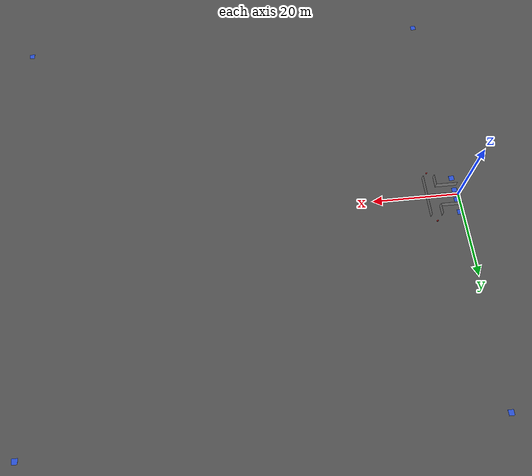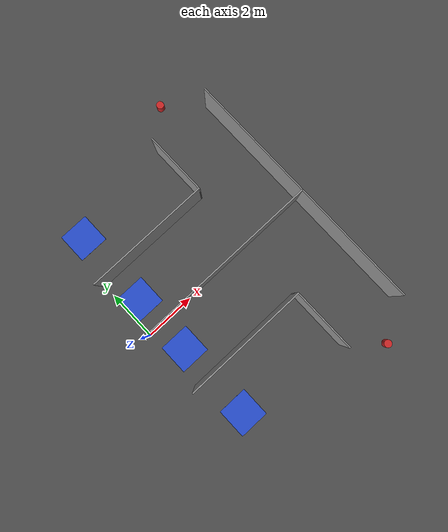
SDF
<sdf version="1.5">
 <world name="default">
  <physics type="ode">
   <ode>
    <solver><type>quick</type><iters>100</iters><sor>1.0</sor></solver>
    <constraints>
     <cfm>0.0</cfm>
     <erp>0.9</erp>
     <contact_max_correcting_vel>0.1</contact_max_correcting_vel>
     <contact_surface_layer>0.0</contact_surface_layer>
    </constraints>
   </ode>
   <real_time_update_rate>1000</real_time_update_rate>
   <max_step_size>0.0010</max_step_size>
  </physics>
  <scene>
   <sky><clouds><speed>12</speed></clouds></sky>
   <ambient>0.4 0.4 0.4 1</ambient>
   <background>0.25 0.25 0.25 1</background>
  </scene>
  <model name="ground_plane">
   <static>true</static>
   <link name="link">
    <collision name="collision">
     <geometry><plane><normal>0 0 1</normal><size>5000 5000</size></plane></geometry>
     <surface><friction><ode><mu>1</mu><mu2>1</mu2></ode></friction></surface>
    </collision>
    <visual name="runway">
     <pose>000 0 0.005 0 0 0</pose>
     <cast_shadows>false</cast_shadows>
     <geometry><plane><normal>0 0 1</normal><size>220 120</size></plane></geometry>
     <material>
      <script><uri>file://media/materials/scripts/gazebo.material</uri><name>Gazebo/DarkGrey</name></script>
     </material>
    </visual>
   </link>
  </model>
  <model name="emiro_wall"><include><uri>model://emiro_wall</uri></include></model>
  <model name="emiro_pad"><include><uri>model://emiro_pad</uri></include><pose>11.5 0 0 0 0 0</pose></model>
  <include><uri>model://sun</uri></include>
 </world>
</sdf>

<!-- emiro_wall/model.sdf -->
<sdf version='1.6'>
  <model name='emiro_wall'>
    <pose frame=''>3.75 0 0 0 -0 0</pose>
    <link name='wall_12'>
      <collision name='wall_12_Collision'>
        <geometry>
          <box>
            <size>4.95 0.05 1.5</size>
          </box>
        </geometry>
        <pose frame=''>0 0 0.75 0 -0 0</pose>
      </collision>
      <visual name='wall_12_Visual'>
        <pose frame=''>0 0 0.75 0 -0 0</pose>
        <geometry>
          <box>
            <size>4.95 0.05 1.5</size>
          </box>
        </geometry>
        <material>
          <script>
            <uri>file://media/materials/scripts/gazebo.material</uri>
            <name>Gazebo/Grey</name>
          </script>
          <ambient>1 1 1 1</ambient>
        </material>
        <meta>
          <layer>0</layer>
        </meta>
      </visual>
      <pose frame=''>-1.3 -2.5 0 0 -0 0</pose>
    </link>
    <link name='wall_14'>
      <collision name='wall_14_Collision'>
        <geometry>
          <box>
            <size>2.55 0.05 1.5</size>
          </box>
        </geometry>
        <pose frame=''>0 0 0.75 0 -0 0</pose>
      </collision>
      <visual name='wall_14_Visual'>
        <pose frame=''>0 0 0.75 0 -0 0</pose>
        <geometry>
          <box>
            <size>2.55 0.05 1.5</size>
          </box>
        </geometry>
        <material>
          <script>
            <uri>file://media/materials/scripts/gazebo.material</uri>
            <name>Gazebo/Grey</name>
          </script>
          <ambient>1 1 1 1</ambient>
        </material>
        <meta>
          <layer>0</layer>
        </meta>
      </visual>
      <pose frame=''>1.15 -3.75 0 0 -0 -1.5708</pose>
    </link>
    <link name='wall_16'>
      <collision name='wall_16_Collision'>
        <geometry>
          <box>
            <size>10.05 0.05 1.5</size>
          </box>
        </geometry>
        <pose frame=''>0 0 0.75 0 -0 0</pose>
      </collision>
      <visual name='wall_16_Visual'>
        <pose frame=''>0 0 0.75 0 -0 0</pose>
        <geometry>
          <box>
            <size>10.05 0.05 1.5</size>
          </box>
        </geometry>
        <material>
          <script>
            <uri>file://media/materials/scripts/gazebo.material</uri>
            <name>Gazebo/Grey</name>
          </script>
          <ambient>1 1 1 1</ambient>
        </material>
        <meta>
          <layer>0</layer>
        </meta>
      </visual>
      <pose frame=''>3.75 0 0 0 -0 1.5708</pose>
    </link>
    <link name='wall_4'>
      <collision name='wall_4_Collision'>
        <geometry>
          <box>
            <size>7.55 0.05 1.5</size>
          </box>
        </geometry>
        <pose frame=''>0 0 0.75 0 -0 0</pose>
      </collision>
      <visual name='wall_4_Visual'>
        <pose frame=''>0 0 0.75 0 -0 0</pose>
        <geometry>
          <box>
            <size>7.55 0.05 1.5</size>
          </box>
        </geometry>
        <material>
          <script>
            <uri>file://media/materials/scripts/gazebo.material</uri>
            <name>Gazebo/Grey</name>
          </script>
          <ambient>1 1 1 1</ambient>
        </material>
        <meta>
          <layer>0</layer>
        </meta>
      </visual>
      <pose frame=''>-0 0 0 0 -0 0</pose>
    </link>
    <link name='wall_6'>
      <collision name='wall_6_Collision'>
        <geometry>
          <box>
            <size>4.95 0.05 1.5</size>
          </box>
        </geometry>
        <pose frame=''>0 0 0.75 0 -0 0</pose>
      </collision>
      <visual name='wall_6_Visual'>
        <pose frame=''>0 0 0.75 0 -0 0</pose>
        <geometry>
          <box>
            <size>4.95 0.05 1.5</size>
          </box>
        </geometry>
        <material>
          <script>
            <uri>file://media/materials/scripts/gazebo.material</uri>
            <name>Gazebo/Grey</name>
          </script>
          <ambient>1 1 1 1</ambient>
        </material>
        <meta>
          <layer>0</layer>
        </meta>
      </visual>
      <pose frame=''>-1.3 2.5 0 0 -0 0</pose>
    </link>
    <link name='wall_8'>
      <collision name='wall_8_Collision'>
        <geometry>
          <box>
            <size>2.48 0.05 1.5</size>
          </box>
        </geometry>
        <pose frame=''>0 0 0.75 0 -0 0</pose>
      </collision>
      <visual name='wall_8_Visual'>
        <pose frame=''>0 0 0.75 0 -0 0</pose>
        <geometry>
          <box>
            <size>2.48 0.05 1.5</size>
          </box>
        </geometry>
        <material>
          <script>
            <uri>file://media/materials/scripts/gazebo.material</uri>
            <name>Gazebo/Grey</name>
          </script>
          <ambient>1 1 1 1</ambient>
        </material>
        <meta>
          <layer>0</layer>
        </meta>
      </visual>
      <pose frame=''>1.15 3.715 0 0 -0 1.5708</pose>
    </link>
    <static>1</static>
  </model>
</sdf>

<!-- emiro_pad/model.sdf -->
<sdf version='1.6'>
  <model name='emiro_pad'>
    <link name='link_1_clone'>
      <inertial>
        <mass>1</mass>
        <inertia>
          <ixx>0.120003</ixx>
          <ixy>0</ixy>
          <ixz>0</ixz>
          <iyy>0.120003</iyy>
          <iyz>0</iyz>
          <izz>0.24</izz>
        </inertia>
        <pose frame=''>0 0 0 0 -0 0</pose>
      </inertial>
      <pose frame=''>-10.9 1.23263 0.00 0 -0 0</pose>
      <gravity>1</gravity>
      <self_collide>0</self_collide>
      <kinematic>0</kinematic>
      <enable_wind>0</enable_wind>
      <visual name='visual'>
        <pose frame=''>0 0 0 0 -0 0</pose>
        <geometry>
          <box>
            <size>1.2 1.2 0.006</size>
          </box>
        </geometry>
        <material>
          <lighting>1</lighting>
          <script>
            <uri>file://media/materials/scripts/gazebo.material</uri>
            <name>Gazebo/Blue</name>
          </script>
          <shader type='pixel'>
            <normal_map>__default__</normal_map>
          </shader>
          <ambient>0.3 0.3 0.3 1</ambient>
          <diffuse>0.7 0.7 0.7 1</diffuse>
          <specular>0.01 0.01 0.01 1</specular>
          <emissive>0 0 0 1</emissive>
        </material>
        <transparency>0</transparency>
        <cast_shadows>1</cast_shadows>
      </visual>
      <collision name='collision'>
        <laser_retro>0</laser_retro>
        <max_contacts>10</max_contacts>
        <pose frame=''>0 0 0 0 -0 0</pose>
        <geometry>
          <box>
            <size>1.2 1.2 0.006</size>
          </box>
        </geometry>
        <surface>
          <friction>
            <ode>
              <mu>1</mu>
              <mu2>1</mu2>
              <fdir1>0 0 0</fdir1>
              <slip1>0</slip1>
              <slip2>0</slip2>
            </ode>
            <torsional>
              <coefficient>1</coefficient>
              <patch_radius>0</patch_radius>
              <surface_radius>0</surface_radius>
              <use_patch_radius>1</use_patch_radius>
              <ode>
                <slip>0</slip>
              </ode>
            </torsional>
          </friction>
          <bounce>
            <restitution_coefficient>0</restitution_coefficient>
            <threshold>1e+06</threshold>
          </bounce>
          <contact>
            <collide_without_contact>0</collide_without_contact>
            <collide_without_contact_bitmask>1</collide_without_contact_bitmask>
            <collide_bitmask>1</collide_bitmask>
            <ode>
              <soft_cfm>0</soft_cfm>
              <soft_erp>0.2</soft_erp>
              <kp>1e+13</kp>
              <kd>1</kd>
              <max_vel>0.01</max_vel>
              <min_depth>0</min_depth>
            </ode>
            <bullet>
              <split_impulse>1</split_impulse>
              <split_impulse_penetration_threshold>-0.01</split_impulse_penetration_threshold>
              <soft_cfm>0</soft_cfm>
              <soft_erp>0.2</soft_erp>
              <kp>1e+13</kp>
              <kd>1</kd>
            </bullet>
          </contact>
        </surface>
      </collision>
    </link>
    <link name='link_1_clone_clone'>
      <inertial>
        <mass>1</mass>
        <inertia>
          <ixx>0.120003</ixx>
          <ixy>0</ixy>
          <ixz>0</ixz>
          <iyy>0.120003</iyy>
          <iyz>0</iyz>
          <izz>0.24</izz>
        </inertia>
        <pose frame=''>0 0 0 0 -0 0</pose>
      </inertial>
      <pose frame=''>-10.9 4.406 0.00 0 -0 0</pose>
      <gravity>1</gravity>
      <self_collide>0</self_collide>
      <kinematic>0</kinematic>
      <enable_wind>0</enable_wind>
      <visual name='visual'>
        <pose frame=''>0 0 0 0 -0 0</pose>
        <geometry>
          <box>
            <size>1.2 1.2 0.006</size>
          </box>
        </geometry>
        <material>
          <lighting>1</lighting>
          <script>
            <uri>file://media/materials/scripts/gazebo.material</uri>
            <name>Gazebo/Blue</name>
          </script>
          <shader type='pixel'>
            <normal_map>__default__</normal_map>
          </shader>
          <ambient>0.3 0.3 0.3 1</ambient>
          <diffuse>0.7 0.7 0.7 1</diffuse>
          <specular>0.01 0.01 0.01 1</specular>
          <emissive>0 0 0 1</emissive>
        </material>
        <transparency>0</transparency>
        <cast_shadows>1</cast_shadows>
      </visual>
      <collision name='collision'>
        <laser_retro>0</laser_retro>
        <max_contacts>10</max_contacts>
        <pose frame=''>0 0 0 0 -0 0</pose>
        <geometry>
          <box>
            <size>1.2 1.2 0.006</size>
          </box>
        </geometry>
        <surface>
          <friction>
            <ode>
              <mu>1</mu>
              <mu2>1</mu2>
              <fdir1>0 0 0</fdir1>
              <slip1>0</slip1>
              <slip2>0</slip2>
            </ode>
            <torsional>
              <coefficient>1</coefficient>
              <patch_radius>0</patch_radius>
              <surface_radius>0</surface_radius>
              <use_patch_radius>1</use_patch_radius>
              <ode>
                <slip>0</slip>
              </ode>
            </torsional>
          </friction>
          <bounce>
            <restitution_coefficient>0</restitution_coefficient>
            <threshold>1e+06</threshold>
          </bounce>
          <contact>
            <collide_without_contact>0</collide_without_contact>
            <collide_without_contact_bitmask>1</collide_without_contact_bitmask>
            <collide_bitmask>1</collide_bitmask>
            <ode>
              <soft_cfm>0</soft_cfm>
              <soft_erp>0.2</soft_erp>
              <kp>1e+13</kp>
              <kd>1</kd>
              <max_vel>0.01</max_vel>
              <min_depth>0</min_depth>
            </ode>
            <bullet>
              <split_impulse>1</split_impulse>
              <split_impulse_penetration_threshold>-0.01</split_impulse_penetration_threshold>
              <soft_cfm>0</soft_cfm>
              <soft_erp>0.2</soft_erp>
              <kp>1e+13</kp>
              <kd>1</kd>
            </bullet>
          </contact>
        </surface>
      </collision>
    </link>
    <link name='link_1_clone_clone_0'>
      <inertial>
        <mass>1</mass>
        <inertia>
          <ixx>0.120003</ixx>
          <ixy>0</ixy>
          <ixz>0</ixz>
          <iyy>0.120003</iyy>
          <iyz>0</iyz>
          <izz>0.24</izz>
        </inertia>
        <pose frame=''>0 0 0 0 -0 0</pose>
      </inertial>
      <pose frame=''>-10.9 -4.40703 0.00 0 -0 0</pose>
      <gravity>1</gravity>
      <self_collide>0</self_collide>
      <kinematic>0</kinematic>
      <enable_wind>0</enable_wind>
      <visual name='visual'>
        <pose frame=''>0 0 0 0 -0 0</pose>
        <geometry>
          <box>
            <size>1.2 1.2 0.006</size>
          </box>
        </geometry>
        <material>
          <lighting>1</lighting>
          <script>
            <uri>file://media/materials/scripts/gazebo.material</uri>
            <name>Gazebo/Blue</name>
          </script>
          <shader type='pixel'>
            <normal_map>__default__</normal_map>
          </shader>
          <ambient>0.3 0.3 0.3 1</ambient>
          <diffuse>0.7 0.7 0.7 1</diffuse>
          <specular>0.01 0.01 0.01 1</specular>
          <emissive>0 0 0 1</emissive>
        </material>
        <transparency>0</transparency>
        <cast_shadows>1</cast_shadows>
      </visual>
      <collision name='collision'>
        <laser_retro>0</laser_retro>
        <max_contacts>10</max_contacts>
        <pose frame=''>0 0 0 0 -0 0</pose>
        <geometry>
          <box>
            <size>1.2 1.2 0.006</size>
          </box>
        </geometry>
        <surface>
          <friction>
            <ode>
              <mu>1</mu>
              <mu2>1</mu2>
              <fdir1>0 0 0</fdir1>
              <slip1>0</slip1>
              <slip2>0</slip2>
            </ode>
            <torsional>
              <coefficient>1</coefficient>
              <patch_radius>0</patch_radius>
              <surface_radius>0</surface_radius>
              <use_patch_radius>1</use_patch_radius>
              <ode>
                <slip>0</slip>
              </ode>
            </torsional>
          </friction>
          <bounce>
            <restitution_coefficient>0</restitution_coefficient>
            <threshold>1e+06</threshold>
          </bounce>
          <contact>
            <collide_without_contact>0</collide_without_contact>
            <collide_without_contact_bitmask>1</collide_without_contact_bitmask>
            <collide_bitmask>1</collide_bitmask>
            <ode>
              <soft_cfm>0</soft_cfm>
              <soft_erp>0.2</soft_erp>
              <kp>1e+13</kp>
              <kd>1</kd>
              <max_vel>0.01</max_vel>
              <min_depth>0</min_depth>
            </ode>
            <bullet>
              <split_impulse>1</split_impulse>
              <split_impulse_penetration_threshold>-0.01</split_impulse_penetration_threshold>
              <soft_cfm>0</soft_cfm>
              <soft_erp>0.2</soft_erp>
              <kp>1e+13</kp>
              <kd>1</kd>
            </bullet>
          </contact>
        </surface>
      </collision>
    </link>
    <link name='pad_dalam_kanan'>
      <inertial>
        <mass>1</mass>
        <inertia>
          <ixx>0.120003</ixx>
          <ixy>0</ixy>
          <ixz>0</ixz>
          <iyy>0.120003</iyy>
          <iyz>0</iyz>
          <izz>0.24</izz>
        </inertia>
        <pose frame=''>0 0 0 0 0 0</pose>
      </inertial>
      <pose frame=''>-10.9 -1.24737 0.0 0 0 0</pose>
      <gravity>1</gravity>
      <self_collide>0</self_collide>
      <kinematic>0</kinematic>
      <enable_wind>0</enable_wind>
      <visual name='visual'>
        <pose frame=''>0 0 0 0 0 0</pose>
        <geometry>
          <box>
            <size>1.2 1.2 0.006</size>
          </box>
        </geometry>
        <material>
          <lighting>1</lighting>
          <script>
            <uri>file://media/materials/scripts/gazebo.material</uri>
            <name>Gazebo/Blue</name>
          </script>
          <shader type='pixel'>
            <normal_map>__default__</normal_map>
          </shader>
          <ambient>0.3 0.3 0.3 1</ambient>
          <diffuse>0.7 0.7 0.7 1</diffuse>
          <specular>0.01 0.01 0.01 1</specular>
          <emissive>0 0 0 1</emissive>
        </material>
        <transparency>0</transparency>
        <cast_shadows>1</cast_shadows>
      </visual>
      <collision name='collision'>
        <laser_retro>0</laser_retro>
        <max_contacts>10</max_contacts>
        <pose frame=''>0 0 0 0 0 0</pose>
        <geometry>
          <box>
            <size>1.2 1.2 0.006</size>
          </box>
        </geometry>
        <surface>
          <friction>
            <ode>
              <mu>1</mu>
              <mu2>1</mu2>
              <fdir1>0 0 0</fdir1>
              <slip1>0</slip1>
              <slip2>0</slip2>
            </ode>
            <torsional>
              <coefficient>1</coefficient>
              <patch_radius>0</patch_radius>
              <surface_radius>0</surface_radius>
              <use_patch_radius>1</use_patch_radius>
              <ode>
                <slip>0</slip>
              </ode>
            </torsional>
          </friction>
          <bounce>
            <restitution_coefficient>0</restitution_coefficient>
            <threshold>1e+06</threshold>
          </bounce>
          <contact>
            <collide_without_contact>0</collide_without_contact>
            <collide_without_contact_bitmask>1</collide_without_contact_bitmask>
            <collide_bitmask>1</collide_bitmask>
            <ode>
              <soft_cfm>0</soft_cfm>
              <soft_erp>0.2</soft_erp>
              <kp>1e+13</kp>
              <kd>1</kd>
              <max_vel>0.01</max_vel>
              <min_depth>0</min_depth>
            </ode>
            <bullet>
              <split_impulse>1</split_impulse>
              <split_impulse_penetration_threshold>-0.01</split_impulse_penetration_threshold>
              <soft_cfm>0</soft_cfm>
              <soft_erp>0.2</soft_erp>
              <kp>1e+13</kp>
              <kd>1</kd>
            </bullet>
          </contact>
        </surface>
      </collision>
    </link>
    <link name='link_1_clone_clone_0_clone_0'>
      <inertial>
        <mass>1</mass>
        <inertia>
          <ixx>0.120003</ixx>
          <ixy>0</ixy>
          <ixz>0</ixz>
          <iyy>0.120003</iyy>
          <iyz>0</iyz>
          <izz>0.24</izz>
        </inertia>
        <pose frame=''>0 0 0 0 -0 0</pose>
      </inertial>
      <pose frame=''>-10.9 49.4026 0.00 0 -0 0</pose>
      <gravity>1</gravity>
      <self_collide>0</self_collide>
      <kinematic>0</kinematic>
      <enable_wind>0</enable_wind>
      <visual name='visual'>
        <pose frame=''>0 0 0 0 -0 0</pose>
        <geometry>
          <box>
            <size>1.2 1.2 0.006</size>
          </box>
        </geometry>
        <material>
          <lighting>1</lighting>
          <script>
            <uri>file://media/materials/scripts/gazebo.material</uri>
            <name>Gazebo/Blue</name>
          </script>
          <shader type='pixel'>
            <normal_map>__default__</normal_map>
          </shader>
          <ambient>0.3 0.3 0.3 1</ambient>
          <diffuse>0.7 0.7 0.7 1</diffuse>
          <specular>0.01 0.01 0.01 1</specular>
          <emissive>0 0 0 1</emissive>
        </material>
        <transparency>0</transparency>
        <cast_shadows>1</cast_shadows>
      </visual>
      <collision name='collision'>
        <laser_retro>0</laser_retro>
        <max_contacts>10</max_contacts>
        <pose frame=''>0 0 0 0 -0 0</pose>
        <geometry>
          <box>
            <size>1.2 1.2 0.006</size>
          </box>
        </geometry>
        <surface>
          <friction>
            <ode>
              <mu>1</mu>
              <mu2>1</mu2>
              <fdir1>0 0 0</fdir1>
              <slip1>0</slip1>
              <slip2>0</slip2>
            </ode>
            <torsional>
              <coefficient>1</coefficient>
              <patch_radius>0</patch_radius>
              <surface_radius>0</surface_radius>
              <use_patch_radius>1</use_patch_radius>
              <ode>
                <slip>0</slip>
              </ode>
            </torsional>
          </friction>
          <bounce>
            <restitution_coefficient>0</restitution_coefficient>
            <threshold>1e+06</threshold>
          </bounce>
          <contact>
            <collide_without_contact>0</collide_without_contact>
            <collide_without_contact_bitmask>1</collide_without_contact_bitmask>
            <collide_bitmask>1</collide_bitmask>
            <ode>
              <soft_cfm>0</soft_cfm>
              <soft_erp>0.2</soft_erp>
              <kp>1e+13</kp>
              <kd>1</kd>
              <max_vel>0.01</max_vel>
              <min_depth>0</min_depth>
            </ode>
            <bullet>
              <split_impulse>1</split_impulse>
              <split_impulse_penetration_threshold>-0.01</split_impulse_penetration_threshold>
              <soft_cfm>0</soft_cfm>
              <soft_erp>0.2</soft_erp>
              <kp>1e+13</kp>
              <kd>1</kd>
            </bullet>
          </contact>
        </surface>
      </collision>
    </link>
    <link name='link_1_clone_clone_0_clone_0_clone'>
      <inertial>
        <mass>1</mass>
        <inertia>
          <ixx>0.120003</ixx>
          <ixy>0</ixy>
          <ixz>0</ixz>
          <iyy>0.120003</iyy>
          <iyz>0</iyz>
          <izz>0.24</izz>
        </inertia>
        <pose frame=''>0 0 0 0 -0 0</pose>
      </inertial>
      <pose frame=''>87.9 49.4026 0.00 0 -0 0</pose>
      <gravity>1</gravity>
      <self_collide>0</self_collide>
      <kinematic>0</kinematic>
      <enable_wind>0</enable_wind>
      <visual name='visual'>
        <pose frame=''>0 0 0 0 -0 0</pose>
        <geometry>
          <box>
            <size>1.2 1.2 0.006</size>
          </box>
        </geometry>
        <material>
          <lighting>1</lighting>
          <script>
            <uri>file://media/materials/scripts/gazebo.material</uri>
            <name>Gazebo/Blue</name>
          </script>
          <shader type='pixel'>
            <normal_map>__default__</normal_map>
          </shader>
          <ambient>0.3 0.3 0.3 1</ambient>
          <diffuse>0.7 0.7 0.7 1</diffuse>
          <specular>0.01 0.01 0.01 1</specular>
          <emissive>0 0 0 1</emissive>
        </material>
        <transparency>0</transparency>
        <cast_shadows>1</cast_shadows>
      </visual>
      <collision name='collision'>
        <laser_retro>0</laser_retro>
        <max_contacts>10</max_contacts>
        <pose frame=''>0 0 0 0 -0 0</pose>
        <geometry>
          <box>
            <size>1.2 1.2 0.006</size>
          </box>
        </geometry>
        <surface>
          <friction>
            <ode>
              <mu>1</mu>
              <mu2>1</mu2>
              <fdir1>0 0 0</fdir1>
              <slip1>0</slip1>
              <slip2>0</slip2>
            </ode>
            <torsional>
              <coefficient>1</coefficient>
              <patch_radius>0</patch_radius>
              <surface_radius>0</surface_radius>
              <use_patch_radius>1</use_patch_radius>
              <ode>
                <slip>0</slip>
              </ode>
            </torsional>
          </friction>
          <bounce>
            <restitution_coefficient>0</restitution_coefficient>
            <threshold>1e+06</threshold>
          </bounce>
          <contact>
            <collide_without_contact>0</collide_without_contact>
            <collide_without_contact_bitmask>1</collide_without_contact_bitmask>
            <collide_bitmask>1</collide_bitmask>
            <ode>
              <soft_cfm>0</soft_cfm>
              <soft_erp>0.2</soft_erp>
              <kp>1e+13</kp>
              <kd>1</kd>
              <max_vel>0.01</max_vel>
              <min_depth>0</min_depth>
            </ode>
            <bullet>
              <split_impulse>1</split_impulse>
              <split_impulse_penetration_threshold>-0.01</split_impulse_penetration_threshold>
              <soft_cfm>0</soft_cfm>
              <soft_erp>0.2</soft_erp>
              <kp>1e+13</kp>
              <kd>1</kd>
            </bullet>
          </contact>
        </surface>
      </collision>
    </link>
    <link name='link_1_clone_clone_0_clone_0_clone_0'>
      <inertial>
        <mass>1</mass>
        <inertia>
          <ixx>0.120003</ixx>
          <ixy>0</ixy>
          <ixz>0</ixz>
          <iyy>0.120003</iyy>
          <iyz>0</iyz>
          <izz>0.24</izz>
        </inertia>
        <pose frame=''>0 0 0 0 -0 0</pose>
      </inertial>
      <pose frame=''>87.9 -49.3974 0.00 0 -0 0</pose>
      <gravity>1</gravity>
      <self_collide>0</self_collide>
      <kinematic>0</kinematic>
      <enable_wind>0</enable_wind>
      <visual name='visual'>
        <pose frame=''>0 0 0 0 -0 0</pose>
        <geometry>
          <box>
            <size>1.2 1.2 0.006</size>
          </box>
        </geometry>
        <material>
          <lighting>1</lighting>
          <script>
            <uri>file://media/materials/scripts/gazebo.material</uri>
            <name>Gazebo/Blue</name>
          </script>
          <shader type='pixel'>
            <normal_map>__default__</normal_map>
          </shader>
          <ambient>0.3 0.3 0.3 1</ambient>
          <diffuse>0.7 0.7 0.7 1</diffuse>
          <specular>0.01 0.01 0.01 1</specular>
          <emissive>0 0 0 1</emissive>
        </material>
        <transparency>0</transparency>
        <cast_shadows>1</cast_shadows>
      </visual>
      <collision name='collision'>
        <laser_retro>0</laser_retro>
        <max_contacts>10</max_contacts>
        <pose frame=''>0 0 0 0 -0 0</pose>
        <geometry>
          <box>
            <size>1.2 1.2 0.006</size>
          </box>
        </geometry>
        <surface>
          <friction>
            <ode>
              <mu>1</mu>
              <mu2>1</mu2>
              <fdir1>0 0 0</fdir1>
              <slip1>0</slip1>
              <slip2>0</slip2>
            </ode>
            <torsional>
              <coefficient>1</coefficient>
              <patch_radius>0</patch_radius>
              <surface_radius>0</surface_radius>
              <use_patch_radius>1</use_patch_radius>
              <ode>
                <slip>0</slip>
              </ode>
            </torsional>
          </friction>
          <bounce>
            <restitution_coefficient>0</restitution_coefficient>
            <threshold>1e+06</threshold>
          </bounce>
          <contact>
            <collide_without_contact>0</collide_without_contact>
            <collide_without_contact_bitmask>1</collide_without_contact_bitmask>
            <collide_bitmask>1</collide_bitmask>
            <ode>
              <soft_cfm>0</soft_cfm>
              <soft_erp>0.2</soft_erp>
              <kp>1e+13</kp>
              <kd>1</kd>
              <max_vel>0.01</max_vel>
              <min_depth>0</min_depth>
            </ode>
            <bullet>
              <split_impulse>1</split_impulse>
              <split_impulse_penetration_threshold>-0.01</split_impulse_penetration_threshold>
              <soft_cfm>0</soft_cfm>
              <soft_erp>0.2</soft_erp>
              <kp>1e+13</kp>
              <kd>1</kd>
            </bullet>
          </contact>
        </surface>
      </collision>
    </link>
    <link name='link_1_clone_clone_0_clone_0_clone_1'>
      <inertial>
        <mass>1</mass>
        <inertia>
          <ixx>0.120003</ixx>
          <ixy>0</ixy>
          <ixz>0</ixz>
          <iyy>0.120003</iyy>
          <iyz>0</iyz>
          <izz>0.24</izz>
        </inertia>
        <pose frame=''>0 0 0 0 -0 0</pose>
      </inertial>
      <pose frame=''>-10.9 -49.3974 0.00 0 -0 0</pose>
      <gravity>1</gravity>
      <self_collide>0</self_collide>
      <kinematic>0</kinematic>
      <enable_wind>0</enable_wind>
      <visual name='visual'>
        <pose frame=''>0 0 0 0 -0 0</pose>
        <geometry>
          <box>
            <size>1.2 1.2 0.006</size>
          </box>
        </geometry>
        <material>
          <lighting>1</lighting>
          <script>
            <uri>file://media/materials/scripts/gazebo.material</uri>
            <name>Gazebo/Blue</name>
          </script>
          <shader type='pixel'>
            <normal_map>__default__</normal_map>
          </shader>
          <ambient>0.3 0.3 0.3 1</ambient>
          <diffuse>0.7 0.7 0.7 1</diffuse>
          <specular>0.01 0.01 0.01 1</specular>
          <emissive>0 0 0 1</emissive>
        </material>
        <transparency>0</transparency>
        <cast_shadows>1</cast_shadows>
      </visual>
      <collision name='collision'>
        <laser_retro>0</laser_retro>
        <max_contacts>10</max_contacts>
        <pose frame=''>0 0 0 0 -0 0</pose>
        <geometry>
          <box>
            <size>1.2 1.2 0.006</size>
          </box>
        </geometry>
        <surface>
          <friction>
            <ode>
              <mu>1</mu>
              <mu2>1</mu2>
              <fdir1>0 0 0</fdir1>
              <slip1>0</slip1>
              <slip2>0</slip2>
            </ode>
            <torsional>
              <coefficient>1</coefficient>
              <patch_radius>0</patch_radius>
              <surface_radius>0</surface_radius>
              <use_patch_radius>1</use_patch_radius>
              <ode>
                <slip>0</slip>
              </ode>
            </torsional>
          </friction>
          <bounce>
            <restitution_coefficient>0</restitution_coefficient>
            <threshold>1e+06</threshold>
          </bounce>
          <contact>
            <collide_without_contact>0</collide_without_contact>
            <collide_without_contact_bitmask>1</collide_without_contact_bitmask>
            <collide_bitmask>1</collide_bitmask>
            <ode>
              <soft_cfm>0</soft_cfm>
              <soft_erp>0.2</soft_erp>
              <kp>1e+13</kp>
              <kd>1</kd>
              <max_vel>0.01</max_vel>
              <min_depth>0</min_depth>
            </ode>
            <bullet>
              <split_impulse>1</split_impulse>
              <split_impulse_penetration_threshold>-0.01</split_impulse_penetration_threshold>
              <soft_cfm>0</soft_cfm>
              <soft_erp>0.2</soft_erp>
              <kp>1e+13</kp>
              <kd>1</kd>
            </bullet>
          </contact>
        </surface>
      </collision>
    </link>
    <link name='link_4'>
      <inertial>
        <mass>1</mass>
        <inertia>
          <ixx>0.145833</ixx>
          <ixy>0</ixy>
          <ixz>0</ixz>
          <iyy>0.145833</iyy>
          <iyz>0</iyz>
          <izz>0.125</izz>
        </inertia>
        <pose frame=''>0 0 0 0 -0 0</pose>
      </inertial>
      <pose frame=''>-5.3169 6.18263 0.12 0 -0 0</pose>
      <gravity>1</gravity>
      <self_collide>0</self_collide>
      <kinematic>0</kinematic>
      <enable_wind>0</enable_wind>
      <visual name='visual'>
        <pose frame=''>0 0 0 0 -0 0</pose>
        <geometry>
          <cylinder>
            <radius>0.15</radius>
            <length>0.3</length>
          </cylinder>
        </geometry>
        <material>
          <lighting>1</lighting>
          <script>
            <uri>file://media/materials/scripts/gazebo.material</uri>
            <name>Gazebo/Red</name>
          </script>
          <shader type='pixel'>
            <normal_map>__default__</normal_map>
          </shader>
          <ambient>0.3 0.3 0.3 1</ambient>
          <diffuse>0.7 0.7 0.7 1</diffuse>
          <specular>0.01 0.01 0.01 1</specular>
          <emissive>0 0 0 1</emissive>
        </material>
        <transparency>0</transparency>
        <cast_shadows>1</cast_shadows>
      </visual>
      <collision name='collision'>
        <laser_retro>0</laser_retro>
        <max_contacts>10</max_contacts>
        <pose frame=''>0 0 0 0 -0 0</pose>
        <geometry>
          <cylinder>
            <radius>0.15</radius>
            <length>0.3</length>
          </cylinder>
        </geometry>
        <surface>
          <friction>
            <ode>
              <mu>1</mu>
              <mu2>1</mu2>
              <fdir1>0 0 0</fdir1>
              <slip1>0</slip1>
              <slip2>0</slip2>
            </ode>
            <torsional>
              <coefficient>1</coefficient>
              <patch_radius>0</patch_radius>
              <surface_radius>0</surface_radius>
              <use_patch_radius>1</use_patch_radius>
              <ode>
                <slip>0</slip>
              </ode>
            </torsional>
          </friction>
          <bounce>
            <restitution_coefficient>0</restitution_coefficient>
            <threshold>1e+06</threshold>
          </bounce>
          <contact>
            <collide_without_contact>0</collide_without_contact>
            <collide_without_contact_bitmask>1</collide_without_contact_bitmask>
            <collide_bitmask>1</collide_bitmask>
            <ode>
              <soft_cfm>0</soft_cfm>
              <soft_erp>0.2</soft_erp>
              <kp>1e+13</kp>
              <kd>1</kd>
              <max_vel>0.01</max_vel>
              <min_depth>0</min_depth>
            </ode>
            <bullet>
              <split_impulse>1</split_impulse>
              <split_impulse_penetration_threshold>-0.01</split_impulse_penetration_threshold>
              <soft_cfm>0</soft_cfm>
              <soft_erp>0.2</soft_erp>
              <kp>1e+13</kp>
              <kd>1</kd>
            </bullet>
          </contact>
        </surface>
      </collision>
    </link>
    <link name='link_4_clone'>
      <inertial>
        <mass>1</mass>
        <inertia>
          <ixx>0.145833</ixx>
          <ixy>0</ixy>
          <ixz>0</ixz>
          <iyy>0.145833</iyy>
          <iyz>0</iyz>
          <izz>0.125</izz>
        </inertia>
        <pose frame=''>0 0 0 0 -0 0</pose>
      </inertial>
      <pose frame=''>-5.3169 -6.17737 0.12 0 -0 0</pose>
      <gravity>1</gravity>
      <self_collide>0</self_collide>
      <kinematic>0</kinematic>
      <enable_wind>0</enable_wind>
      <visual name='visual'>
        <pose frame=''>0 0 0 0 -0 0</pose>
        <geometry>
          <cylinder>
            <radius>0.15</radius>
            <length>0.3</length>
          </cylinder>
        </geometry>
        <material>
          <lighting>1</lighting>
          <script>
            <uri>file://media/materials/scripts/gazebo.material</uri>
            <name>Gazebo/Red</name>
          </script>
          <shader type='pixel'>
            <normal_map>__default__</normal_map>
          </shader>
          <ambient>0.3 0.3 0.3 1</ambient>
          <diffuse>0.7 0.7 0.7 1</diffuse>
          <specular>0.01 0.01 0.01 1</specular>
          <emissive>0 0 0 1</emissive>
        </material>
        <transparency>0</transparency>
        <cast_shadows>1</cast_shadows>
      </visual>
      <collision name='collision'>
        <laser_retro>0</laser_retro>
        <max_contacts>10</max_contacts>
        <pose frame=''>0 0 0 0 -0 0</pose>
        <geometry>
          <cylinder>
            <radius>0.15</radius>
            <length>0.3</length>
          </cylinder>
        </geometry>
        <surface>
          <friction>
            <ode>
              <mu>1</mu>
              <mu2>1</mu2>
              <fdir1>0 0 0</fdir1>
              <slip1>0</slip1>
              <slip2>0</slip2>
            </ode>
            <torsional>
              <coefficient>1</coefficient>
              <patch_radius>0</patch_radius>
              <surface_radius>0</surface_radius>
              <use_patch_radius>1</use_patch_radius>
              <ode>
                <slip>0</slip>
              </ode>
            </torsional>
          </friction>
          <bounce>
            <restitution_coefficient>0</restitution_coefficient>
            <threshold>1e+06</threshold>
          </bounce>
          <contact>
            <collide_without_contact>0</collide_without_contact>
            <collide_without_contact_bitmask>1</collide_without_contact_bitmask>
            <collide_bitmask>1</collide_bitmask>
            <ode>
              <soft_cfm>0</soft_cfm>
              <soft_erp>0.2</soft_erp>
              <kp>1e+13</kp>
              <kd>1</kd>
              <max_vel>0.01</max_vel>
              <min_depth>0</min_depth>
            </ode>
            <bullet>
              <split_impulse>1</split_impulse>
              <split_impulse_penetration_threshold>-0.01</split_impulse_penetration_threshold>
              <soft_cfm>0</soft_cfm>
              <soft_erp>0.2</soft_erp>
              <kp>1e+13</kp>
              <kd>1</kd>
            </bullet>
          </contact>
        </surface>
      </collision>
    </link>
  </model>
</sdf>
